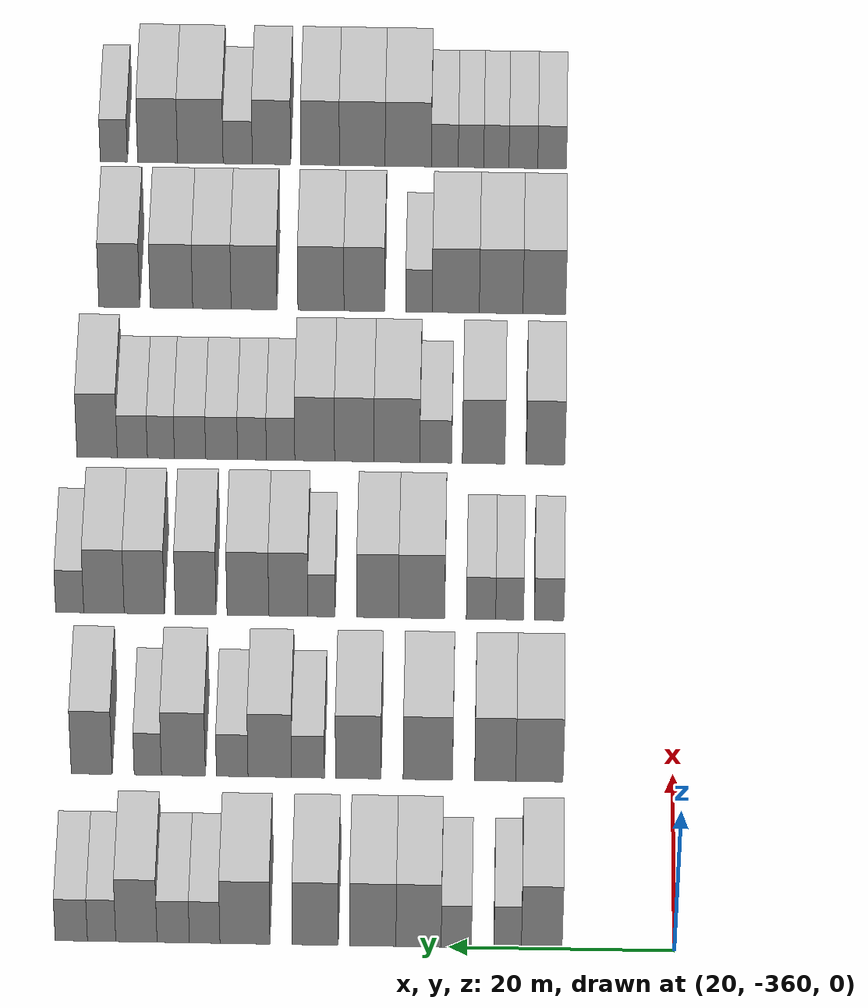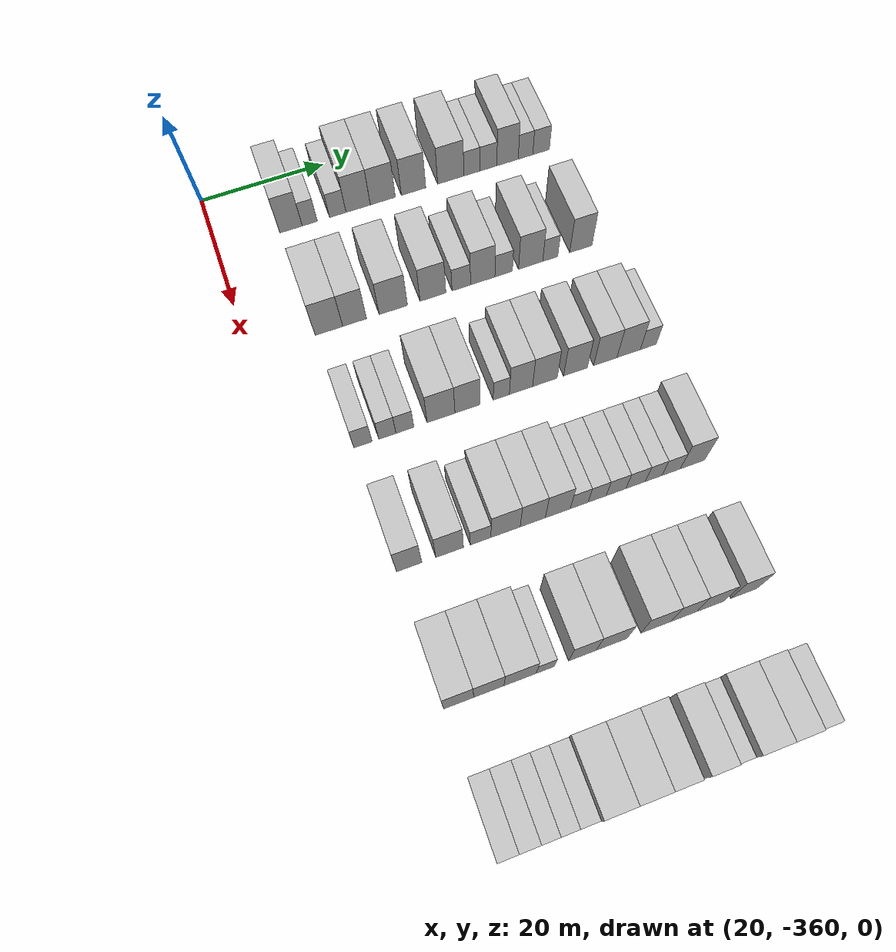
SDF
<sdf version="1.6">
 <world name="default">
  <model name="building_1">
   <static>1</static>
   <pose>25.0000 -348.1907 0 0.000000 0.000000 0.000000</pose>
   <link name="link">
    <pose>0 0 4.50 0 0 0</pose>
    <collision name="collision"><geometry><box><size>10.0000 3.6186 9.0000</size></box></geometry></collision>
    <visual name="visual">
     <cast_shadows>0</cast_shadows>
     <geometry><box><size>10.0000 3.6186 9.0000</size></box></geometry>
     <material>
      <script>
       <uri>model://HANNAS_wall/materials/scripts</uri>
       <uri>model://HANNAS_wall/materials/textures</uri>
       <name>vrc/HANNAS_wall</name>
      </script>
     </material>
    </visual>
   </link>
  </model>
  <model name="building_2">
   <static>1</static>
   <pose>25.0000 -345.1606 0 0.000000 0.000000 0.000000</pose>
   <link name="link">
    <pose>0 0 3.00 0 0 0</pose>
    <collision name="collision"><geometry><box><size>10.0000 2.4416 6.0000</size></box></geometry></collision>
    <visual name="visual">
     <cast_shadows>0</cast_shadows>
     <geometry><box><size>10.0000 2.4416 6.0000</size></box></geometry>
     <material>
      <script>
       <uri>model://HANNAS_wall/materials/scripts</uri>
       <uri>model://HANNAS_wall/materials/textures</uri>
       <name>vrc/HANNAS_wall</name>
      </script>
     </material>
    </visual>
   </link>
  </model>
  <model name="building_3">
   <static>1</static>
   <pose>25.0000 -340.5947 0 0.000000 0.000000 0.000000</pose>
   <link name="link">
    <pose>0 0 3.00 0 0 0</pose>
    <collision name="collision"><geometry><box><size>10.0000 2.6903 6.0000</size></box></geometry></collision>
    <visual name="visual">
     <cast_shadows>0</cast_shadows>
     <geometry><box><size>10.0000 2.6903 6.0000</size></box></geometry>
     <material>
      <script>
       <uri>model://HANNAS_wall/materials/scripts</uri>
       <uri>model://HANNAS_wall/materials/textures</uri>
       <name>vrc/HANNAS_wall</name>
      </script>
     </material>
    </visual>
   </link>
  </model>
  <model name="building_4">
   <static>1</static>
   <pose>25.0000 -337.2430 0 0.000000 0.000000 0.000000</pose>
   <link name="link">
    <pose>0 0 4.50 0 0 0</pose>
    <collision name="collision"><geometry><box><size>10.0000 4.0130 9.0000</size></box></geometry></collision>
    <visual name="visual">
     <cast_shadows>0</cast_shadows>
     <geometry><box><size>10.0000 4.0130 9.0000</size></box></geometry>
     <material>
      <script>
       <uri>model://HANNAS_wall/materials/scripts</uri>
       <uri>model://HANNAS_wall/materials/textures</uri>
       <name>vrc/HANNAS_wall</name>
      </script>
     </material>
    </visual>
   </link>
  </model>
  <model name="building_5">
   <static>1</static>
   <pose>25.0000 -333.1669 0 0.000000 0.000000 0.000000</pose>
   <link name="link">
    <pose>0 0 4.50 0 0 0</pose>
    <collision name="collision"><geometry><box><size>10.0000 4.1390 9.0000</size></box></geometry></collision>
    <visual name="visual">
     <cast_shadows>0</cast_shadows>
     <geometry><box><size>10.0000 4.1390 9.0000</size></box></geometry>
     <material>
      <script>
       <uri>model://HANNAS_wall/materials/scripts</uri>
       <uri>model://HANNAS_wall/materials/textures</uri>
       <name>vrc/HANNAS_wall</name>
      </script>
     </material>
    </visual>
   </link>
  </model>
  <model name="building_6">
   <static>1</static>
   <pose>25.0000 -328.0562 0 0.000000 0.000000 0.000000</pose>
   <link name="link">
    <pose>0 0 4.50 0 0 0</pose>
    <collision name="collision"><geometry><box><size>10.0000 4.0825 9.0000</size></box></geometry></collision>
    <visual name="visual">
     <cast_shadows>0</cast_shadows>
     <geometry><box><size>10.0000 4.0825 9.0000</size></box></geometry>
     <material>
      <script>
       <uri>model://HANNAS_wall/materials/scripts</uri>
       <uri>model://HANNAS_wall/materials/textures</uri>
       <name>vrc/HANNAS_wall</name>
      </script>
     </material>
    </visual>
   </link>
  </model>
  <model name="building_7">
   <static>1</static>
   <pose>25.0000 -321.7892 0 0.000000 0.000000 0.000000</pose>
   <link name="link">
    <pose>0 0 4.50 0 0 0</pose>
    <collision name="collision"><geometry><box><size>10.0000 4.4515 9.0000</size></box></geometry></collision>
    <visual name="visual">
     <cast_shadows>0</cast_shadows>
     <geometry><box><size>10.0000 4.4515 9.0000</size></box></geometry>
     <material>
      <script>
       <uri>model://HANNAS_wall/materials/scripts</uri>
       <uri>model://HANNAS_wall/materials/textures</uri>
       <name>vrc/HANNAS_wall</name>
      </script>
     </material>
    </visual>
   </link>
  </model>
  <model name="building_8">
   <static>1</static>
   <pose>25.0000 -318.2022 0 0.000000 0.000000 0.000000</pose>
   <link name="link">
    <pose>0 0 3.00 0 0 0</pose>
    <collision name="collision"><geometry><box><size>10.0000 2.7226 6.0000</size></box></geometry></collision>
    <visual name="visual">
     <cast_shadows>0</cast_shadows>
     <geometry><box><size>10.0000 2.7226 6.0000</size></box></geometry>
     <material>
      <script>
       <uri>model://HANNAS_wall/materials/scripts</uri>
       <uri>model://HANNAS_wall/materials/textures</uri>
       <name>vrc/HANNAS_wall</name>
      </script>
     </material>
    </visual>
   </link>
  </model>
  <model name="building_9">
   <static>1</static>
   <pose>25.0000 -315.4016 0 0.000000 0.000000 0.000000</pose>
   <link name="link">
    <pose>0 0 3.00 0 0 0</pose>
    <collision name="collision"><geometry><box><size>10.0000 2.8787 6.0000</size></box></geometry></collision>
    <visual name="visual">
     <cast_shadows>0</cast_shadows>
     <geometry><box><size>10.0000 2.8787 6.0000</size></box></geometry>
     <material>
      <script>
       <uri>model://HANNAS_wall/materials/scripts</uri>
       <uri>model://HANNAS_wall/materials/textures</uri>
       <name>vrc/HANNAS_wall</name>
      </script>
     </material>
    </visual>
   </link>
  </model>
  <model name="building_10">
   <static>1</static>
   <pose>25.0000 -312.1245 0 0.000000 0.000000 0.000000</pose>
   <link name="link">
    <pose>0 0 4.50 0 0 0</pose>
    <collision name="collision"><geometry><box><size>10.0000 3.6753 9.0000</size></box></geometry></collision>
    <visual name="visual">
     <cast_shadows>0</cast_shadows>
     <geometry><box><size>10.0000 3.6753 9.0000</size></box></geometry>
     <material>
      <script>
       <uri>model://HANNAS_wall/materials/scripts</uri>
       <uri>model://HANNAS_wall/materials/textures</uri>
       <name>vrc/HANNAS_wall</name>
      </script>
     </material>
    </visual>
   </link>
  </model>
  <model name="building_11">
   <static>1</static>
   <pose>25.0000 -309.0250 0 0.000000 0.000000 0.000000</pose>
   <link name="link">
    <pose>0 0 3.00 0 0 0</pose>
    <collision name="collision"><geometry><box><size>10.0000 2.5237 6.0000</size></box></geometry></collision>
    <visual name="visual">
     <cast_shadows>0</cast_shadows>
     <geometry><box><size>10.0000 2.5237 6.0000</size></box></geometry>
     <material>
      <script>
       <uri>model://HANNAS_wall/materials/scripts</uri>
       <uri>model://HANNAS_wall/materials/textures</uri>
       <name>vrc/HANNAS_wall</name>
      </script>
     </material>
    </visual>
   </link>
  </model>
  <model name="building_12">
   <static>1</static>
   <pose>25.0000 -306.3264 0 0.000000 0.000000 0.000000</pose>
   <link name="link">
    <pose>0 0 3.00 0 0 0</pose>
    <collision name="collision"><geometry><box><size>10.0000 2.8734 6.0000</size></box></geometry></collision>
    <visual name="visual">
     <cast_shadows>0</cast_shadows>
     <geometry><box><size>10.0000 2.8734 6.0000</size></box></geometry>
     <material>
      <script>
       <uri>model://HANNAS_wall/materials/scripts</uri>
       <uri>model://HANNAS_wall/materials/textures</uri>
       <name>vrc/HANNAS_wall</name>
      </script>
     </material>
    </visual>
   </link>
  </model>
  <model name="building_171">
   <static>1</static>
   <pose>44.0000 -347.8602 0 0.000000 0.000000 0.000000</pose>
   <link name="link">
    <pose>0 0 4.50 0 0 0</pose>
    <collision name="collision"><geometry><box><size>10.0000 4.2797 9.0000</size></box></geometry></collision>
    <visual name="visual">
     <cast_shadows>0</cast_shadows>
     <geometry><box><size>10.0000 4.2797 9.0000</size></box></geometry>
     <material>
      <script>
       <uri>model://HANNAS_wall/materials/scripts</uri>
       <uri>model://HANNAS_wall/materials/textures</uri>
       <name>vrc/HANNAS_wall</name>
      </script>
     </material>
    </visual>
   </link>
  </model>
  <model name="building_172">
   <static>1</static>
   <pose>44.0000 -343.8619 0 0.000000 0.000000 0.000000</pose>
   <link name="link">
    <pose>0 0 4.50 0 0 0</pose>
    <collision name="collision"><geometry><box><size>10.0000 3.7168 9.0000</size></box></geometry></collision>
    <visual name="visual">
     <cast_shadows>0</cast_shadows>
     <geometry><box><size>10.0000 3.7168 9.0000</size></box></geometry>
     <material>
      <script>
       <uri>model://HANNAS_wall/materials/scripts</uri>
       <uri>model://HANNAS_wall/materials/textures</uri>
       <name>vrc/HANNAS_wall</name>
      </script>
     </material>
    </visual>
   </link>
  </model>
  <model name="building_173">
   <static>1</static>
   <pose>44.0000 -337.7668 0 0.000000 0.000000 0.000000</pose>
   <link name="link">
    <pose>0 0 4.50 0 0 0</pose>
    <collision name="collision"><geometry><box><size>10.0000 4.4733 9.0000</size></box></geometry></collision>
    <visual name="visual">
     <cast_shadows>0</cast_shadows>
     <geometry><box><size>10.0000 4.4733 9.0000</size></box></geometry>
     <material>
      <script>
       <uri>model://HANNAS_wall/materials/scripts</uri>
       <uri>model://HANNAS_wall/materials/textures</uri>
       <name>vrc/HANNAS_wall</name>
      </script>
     </material>
    </visual>
   </link>
  </model>
  <model name="building_174">
   <static>1</static>
   <pose>44.0000 -331.4646 0 0.000000 0.000000 0.000000</pose>
   <link name="link">
    <pose>0 0 4.50 0 0 0</pose>
    <collision name="collision"><geometry><box><size>10.0000 4.1311 9.0000</size></box></geometry></collision>
    <visual name="visual">
     <cast_shadows>0</cast_shadows>
     <geometry><box><size>10.0000 4.1311 9.0000</size></box></geometry>
     <material>
      <script>
       <uri>model://HANNAS_wall/materials/scripts</uri>
       <uri>model://HANNAS_wall/materials/textures</uri>
       <name>vrc/HANNAS_wall</name>
      </script>
     </material>
    </visual>
   </link>
  </model>
  <model name="building_175">
   <static>1</static>
   <pose>44.0000 -326.9094 0 0.000000 0.000000 0.000000</pose>
   <link name="link">
    <pose>0 0 3.00 0 0 0</pose>
    <collision name="collision"><geometry><box><size>10.0000 2.9793 6.0000</size></box></geometry></collision>
    <visual name="visual">
     <cast_shadows>0</cast_shadows>
     <geometry><box><size>10.0000 2.9793 6.0000</size></box></geometry>
     <material>
      <script>
       <uri>model://HANNAS_wall/materials/scripts</uri>
       <uri>model://HANNAS_wall/materials/textures</uri>
       <name>vrc/HANNAS_wall</name>
      </script>
     </material>
    </visual>
   </link>
  </model>
  <model name="building_176">
   <static>1</static>
   <pose>44.0000 -323.4449 0 0.000000 0.000000 0.000000</pose>
   <link name="link">
    <pose>0 0 4.50 0 0 0</pose>
    <collision name="collision"><geometry><box><size>10.0000 3.9497 9.0000</size></box></geometry></collision>
    <visual name="visual">
     <cast_shadows>0</cast_shadows>
     <geometry><box><size>10.0000 3.9497 9.0000</size></box></geometry>
     <material>
      <script>
       <uri>model://HANNAS_wall/materials/scripts</uri>
       <uri>model://HANNAS_wall/materials/textures</uri>
       <name>vrc/HANNAS_wall</name>
      </script>
     </material>
    </visual>
   </link>
  </model>
  <model name="building_177">
   <static>1</static>
   <pose>44.0000 -320.0393 0 0.000000 0.000000 0.000000</pose>
   <link name="link">
    <pose>0 0 3.00 0 0 0</pose>
    <collision name="collision"><geometry><box><size>10.0000 2.8614 6.0000</size></box></geometry></collision>
    <visual name="visual">
     <cast_shadows>0</cast_shadows>
     <geometry><box><size>10.0000 2.8614 6.0000</size></box></geometry>
     <material>
      <script>
       <uri>model://HANNAS_wall/materials/scripts</uri>
       <uri>model://HANNAS_wall/materials/textures</uri>
       <name>vrc/HANNAS_wall</name>
      </script>
     </material>
    </visual>
   </link>
  </model>
  <model name="building_178">
   <static>1</static>
   <pose>44.0000 -315.6169 0 0.000000 0.000000 0.000000</pose>
   <link name="link">
    <pose>0 0 4.50 0 0 0</pose>
    <collision name="collision"><geometry><box><size>10.0000 3.9834 9.0000</size></box></geometry></collision>
    <visual name="visual">
     <cast_shadows>0</cast_shadows>
     <geometry><box><size>10.0000 3.9834 9.0000</size></box></geometry>
     <material>
      <script>
       <uri>model://HANNAS_wall/materials/scripts</uri>
       <uri>model://HANNAS_wall/materials/textures</uri>
       <name>vrc/HANNAS_wall</name>
      </script>
     </material>
    </visual>
   </link>
  </model>
  <model name="building_179">
   <static>1</static>
   <pose>44.0000 -312.3889 0 0.000000 0.000000 0.000000</pose>
   <link name="link">
    <pose>0 0 3.00 0 0 0</pose>
    <collision name="collision"><geometry><box><size>10.0000 2.4725 6.0000</size></box></geometry></collision>
    <visual name="visual">
     <cast_shadows>0</cast_shadows>
     <geometry><box><size>10.0000 2.4725 6.0000</size></box></geometry>
     <material>
      <script>
       <uri>model://HANNAS_wall/materials/scripts</uri>
       <uri>model://HANNAS_wall/materials/textures</uri>
       <name>vrc/HANNAS_wall</name>
      </script>
     </material>
    </visual>
   </link>
  </model>
  <model name="building_180">
   <static>1</static>
   <pose>44.0000 -307.2992 0 0.000000 0.000000 0.000000</pose>
   <link name="link">
    <pose>0 0 4.50 0 0 0</pose>
    <collision name="collision"><geometry><box><size>10.0000 3.7068 9.0000</size></box></geometry></collision>
    <visual name="visual">
     <cast_shadows>0</cast_shadows>
     <geometry><box><size>10.0000 3.7068 9.0000</size></box></geometry>
     <material>
      <script>
       <uri>model://HANNAS_wall/materials/scripts</uri>
       <uri>model://HANNAS_wall/materials/textures</uri>
       <name>vrc/HANNAS_wall</name>
      </script>
     </material>
    </visual>
   </link>
  </model>
  <model name="building_346">
   <static>1</static>
   <pose>63.0000 -348.6409 0 0.000000 0.000000 0.000000</pose>
   <link name="link">
    <pose>0 0 3.00 0 0 0</pose>
    <collision name="collision"><geometry><box><size>10.0000 2.7182 6.0000</size></box></geometry></collision>
    <visual name="visual">
     <cast_shadows>0</cast_shadows>
     <geometry><box><size>10.0000 2.7182 6.0000</size></box></geometry>
     <material>
      <script>
       <uri>model://HANNAS_wall/materials/scripts</uri>
       <uri>model://HANNAS_wall/materials/textures</uri>
       <name>vrc/HANNAS_wall</name>
      </script>
     </material>
    </visual>
   </link>
  </model>
  <model name="building_347">
   <static>1</static>
   <pose>63.0000 -344.9984 0 0.000000 0.000000 0.000000</pose>
   <link name="link">
    <pose>0 0 3.00 0 0 0</pose>
    <collision name="collision"><geometry><box><size>10.0000 2.5669 6.0000</size></box></geometry></collision>
    <visual name="visual">
     <cast_shadows>0</cast_shadows>
     <geometry><box><size>10.0000 2.5669 6.0000</size></box></geometry>
     <material>
      <script>
       <uri>model://HANNAS_wall/materials/scripts</uri>
       <uri>model://HANNAS_wall/materials/textures</uri>
       <name>vrc/HANNAS_wall</name>
      </script>
     </material>
    </visual>
   </link>
  </model>
  <model name="building_348">
   <static>1</static>
   <pose>63.0000 -342.3646 0 0.000000 0.000000 0.000000</pose>
   <link name="link">
    <pose>0 0 3.00 0 0 0</pose>
    <collision name="collision"><geometry><box><size>10.0000 2.7005 6.0000</size></box></geometry></collision>
    <visual name="visual">
     <cast_shadows>0</cast_shadows>
     <geometry><box><size>10.0000 2.7005 6.0000</size></box></geometry>
     <material>
      <script>
       <uri>model://HANNAS_wall/materials/scripts</uri>
       <uri>model://HANNAS_wall/materials/textures</uri>
       <name>vrc/HANNAS_wall</name>
      </script>
     </material>
    </visual>
   </link>
  </model>
  <model name="building_349">
   <static>1</static>
   <pose>63.0000 -336.8951 0 0.000000 0.000000 0.000000</pose>
   <link name="link">
    <pose>0 0 4.50 0 0 0</pose>
    <collision name="collision"><geometry><box><size>10.0000 4.2386 9.0000</size></box></geometry></collision>
    <visual name="visual">
     <cast_shadows>0</cast_shadows>
     <geometry><box><size>10.0000 4.2386 9.0000</size></box></geometry>
     <material>
      <script>
       <uri>model://HANNAS_wall/materials/scripts</uri>
       <uri>model://HANNAS_wall/materials/textures</uri>
       <name>vrc/HANNAS_wall</name>
      </script>
     </material>
    </visual>
   </link>
  </model>
  <model name="building_350">
   <static>1</static>
   <pose>63.0000 -332.8420 0 0.000000 0.000000 0.000000</pose>
   <link name="link">
    <pose>0 0 4.50 0 0 0</pose>
    <collision name="collision"><geometry><box><size>10.0000 3.8676 9.0000</size></box></geometry></collision>
    <visual name="visual">
     <cast_shadows>0</cast_shadows>
     <geometry><box><size>10.0000 3.8676 9.0000</size></box></geometry>
     <material>
      <script>
       <uri>model://HANNAS_wall/materials/scripts</uri>
       <uri>model://HANNAS_wall/materials/textures</uri>
       <name>vrc/HANNAS_wall</name>
      </script>
     </material>
    </visual>
   </link>
  </model>
  <model name="building_351">
   <static>1</static>
   <pose>63.0000 -327.6568 0 0.000000 0.000000 0.000000</pose>
   <link name="link">
    <pose>0 0 3.00 0 0 0</pose>
    <collision name="collision"><geometry><box><size>10.0000 2.5027 6.0000</size></box></geometry></collision>
    <visual name="visual">
     <cast_shadows>0</cast_shadows>
     <geometry><box><size>10.0000 2.5027 6.0000</size></box></geometry>
     <material>
      <script>
       <uri>model://HANNAS_wall/materials/scripts</uri>
       <uri>model://HANNAS_wall/materials/textures</uri>
       <name>vrc/HANNAS_wall</name>
      </script>
     </material>
    </visual>
   </link>
  </model>
  <model name="building_352">
   <static>1</static>
   <pose>63.0000 -324.6004 0 0.000000 0.000000 0.000000</pose>
   <link name="link">
    <pose>0 0 4.50 0 0 0</pose>
    <collision name="collision"><geometry><box><size>10.0000 3.6103 9.0000</size></box></geometry></collision>
    <visual name="visual">
     <cast_shadows>0</cast_shadows>
     <geometry><box><size>10.0000 3.6103 9.0000</size></box></geometry>
     <material>
      <script>
       <uri>model://HANNAS_wall/materials/scripts</uri>
       <uri>model://HANNAS_wall/materials/textures</uri>
       <name>vrc/HANNAS_wall</name>
      </script>
     </material>
    </visual>
   </link>
  </model>
  <model name="building_353">
   <static>1</static>
   <pose>63.0000 -320.8687 0 0.000000 0.000000 0.000000</pose>
   <link name="link">
    <pose>0 0 4.50 0 0 0</pose>
    <collision name="collision"><geometry><box><size>10.0000 3.8529 9.0000</size></box></geometry></collision>
    <visual name="visual">
     <cast_shadows>0</cast_shadows>
     <geometry><box><size>10.0000 3.8529 9.0000</size></box></geometry>
     <material>
      <script>
       <uri>model://HANNAS_wall/materials/scripts</uri>
       <uri>model://HANNAS_wall/materials/textures</uri>
       <name>vrc/HANNAS_wall</name>
      </script>
     </material>
    </visual>
   </link>
  </model>
  <model name="building_354">
   <static>1</static>
   <pose>63.0000 -316.0559 0 0.000000 0.000000 0.000000</pose>
   <link name="link">
    <pose>0 0 4.50 0 0 0</pose>
    <collision name="collision"><geometry><box><size>10.0000 3.7727 9.0000</size></box></geometry></collision>
    <visual name="visual">
     <cast_shadows>0</cast_shadows>
     <geometry><box><size>10.0000 3.7727 9.0000</size></box></geometry>
     <material>
      <script>
       <uri>model://HANNAS_wall/materials/scripts</uri>
       <uri>model://HANNAS_wall/materials/textures</uri>
       <name>vrc/HANNAS_wall</name>
      </script>
     </material>
    </visual>
   </link>
  </model>
  <model name="building_355">
   <static>1</static>
   <pose>63.0000 -311.3081 0 0.000000 0.000000 0.000000</pose>
   <link name="link">
    <pose>0 0 4.50 0 0 0</pose>
    <collision name="collision"><geometry><box><size>10.0000 3.7229 9.0000</size></box></geometry></collision>
    <visual name="visual">
     <cast_shadows>0</cast_shadows>
     <geometry><box><size>10.0000 3.7229 9.0000</size></box></geometry>
     <material>
      <script>
       <uri>model://HANNAS_wall/materials/scripts</uri>
       <uri>model://HANNAS_wall/materials/textures</uri>
       <name>vrc/HANNAS_wall</name>
      </script>
     </material>
    </visual>
   </link>
  </model>
  <model name="building_356">
   <static>1</static>
   <pose>63.0000 -307.5812 0 0.000000 0.000000 0.000000</pose>
   <link name="link">
    <pose>0 0 4.50 0 0 0</pose>
    <collision name="collision"><geometry><box><size>10.0000 3.7310 9.0000</size></box></geometry></collision>
    <visual name="visual">
     <cast_shadows>0</cast_shadows>
     <geometry><box><size>10.0000 3.7310 9.0000</size></box></geometry>
     <material>
      <script>
       <uri>model://HANNAS_wall/materials/scripts</uri>
       <uri>model://HANNAS_wall/materials/textures</uri>
       <name>vrc/HANNAS_wall</name>
      </script>
     </material>
    </visual>
   </link>
  </model>
  <model name="building_357">
   <static>1</static>
   <pose>63.0000 -304.4233 0 0.000000 0.000000 0.000000</pose>
   <link name="link">
    <pose>0 0 3.00 0 0 0</pose>
    <collision name="collision"><geometry><box><size>10.0000 2.5848 6.0000</size></box></geometry></collision>
    <visual name="visual">
     <cast_shadows>0</cast_shadows>
     <geometry><box><size>10.0000 2.5848 6.0000</size></box></geometry>
     <material>
      <script>
       <uri>model://HANNAS_wall/materials/scripts</uri>
       <uri>model://HANNAS_wall/materials/textures</uri>
       <name>vrc/HANNAS_wall</name>
      </script>
     </material>
    </visual>
   </link>
  </model>
  <model name="building_518">
   <static>1</static>
   <pose>82.0000 -348.1939 0 0.000000 0.000000 0.000000</pose>
   <link name="link">
    <pose>0 0 4.50 0 0 0</pose>
    <collision name="collision"><geometry><box><size>10.0000 3.6122 9.0000</size></box></geometry></collision>
    <visual name="visual">
     <cast_shadows>0</cast_shadows>
     <geometry><box><size>10.0000 3.6122 9.0000</size></box></geometry>
     <material>
      <script>
       <uri>model://HANNAS_wall/materials/scripts</uri>
       <uri>model://HANNAS_wall/materials/textures</uri>
       <name>vrc/HANNAS_wall</name>
      </script>
     </material>
    </visual>
   </link>
  </model>
  <model name="building_519">
   <static>1</static>
   <pose>82.0000 -342.3950 0 0.000000 0.000000 0.000000</pose>
   <link name="link">
    <pose>0 0 4.50 0 0 0</pose>
    <collision name="collision"><geometry><box><size>10.0000 3.9855 9.0000</size></box></geometry></collision>
    <visual name="visual">
     <cast_shadows>0</cast_shadows>
     <geometry><box><size>10.0000 3.9855 9.0000</size></box></geometry>
     <material>
      <script>
       <uri>model://HANNAS_wall/materials/scripts</uri>
       <uri>model://HANNAS_wall/materials/textures</uri>
       <name>vrc/HANNAS_wall</name>
      </script>
     </material>
    </visual>
   </link>
  </model>
  <model name="building_520">
   <static>1</static>
   <pose>82.0000 -337.9109 0 0.000000 0.000000 0.000000</pose>
   <link name="link">
    <pose>0 0 3.00 0 0 0</pose>
    <collision name="collision"><geometry><box><size>10.0000 2.9827 6.0000</size></box></geometry></collision>
    <visual name="visual">
     <cast_shadows>0</cast_shadows>
     <geometry><box><size>10.0000 2.9827 6.0000</size></box></geometry>
     <material>
      <script>
       <uri>model://HANNAS_wall/materials/scripts</uri>
       <uri>model://HANNAS_wall/materials/textures</uri>
       <name>vrc/HANNAS_wall</name>
      </script>
     </material>
    </visual>
   </link>
  </model>
  <model name="building_521">
   <static>1</static>
   <pose>82.0000 -334.2741 0 0.000000 0.000000 0.000000</pose>
   <link name="link">
    <pose>0 0 4.50 0 0 0</pose>
    <collision name="collision"><geometry><box><size>10.0000 4.2909 9.0000</size></box></geometry></collision>
    <visual name="visual">
     <cast_shadows>0</cast_shadows>
     <geometry><box><size>10.0000 4.2909 9.0000</size></box></geometry>
     <material>
      <script>
       <uri>model://HANNAS_wall/materials/scripts</uri>
       <uri>model://HANNAS_wall/materials/textures</uri>
       <name>vrc/HANNAS_wall</name>
      </script>
     </material>
    </visual>
   </link>
  </model>
  <model name="building_522">
   <static>1</static>
   <pose>82.0000 -330.2715 0 0.000000 0.000000 0.000000</pose>
   <link name="link">
    <pose>0 0 4.50 0 0 0</pose>
    <collision name="collision"><geometry><box><size>10.0000 3.7142 9.0000</size></box></geometry></collision>
    <visual name="visual">
     <cast_shadows>0</cast_shadows>
     <geometry><box><size>10.0000 3.7142 9.0000</size></box></geometry>
     <material>
      <script>
       <uri>model://HANNAS_wall/materials/scripts</uri>
       <uri>model://HANNAS_wall/materials/textures</uri>
       <name>vrc/HANNAS_wall</name>
      </script>
     </material>
    </visual>
   </link>
  </model>
  <model name="building_523">
   <static>1</static>
   <pose>82.0000 -326.5477 0 0.000000 0.000000 0.000000</pose>
   <link name="link">
    <pose>0 0 4.50 0 0 0</pose>
    <collision name="collision"><geometry><box><size>10.0000 3.7333 9.0000</size></box></geometry></collision>
    <visual name="visual">
     <cast_shadows>0</cast_shadows>
     <geometry><box><size>10.0000 3.7333 9.0000</size></box></geometry>
     <material>
      <script>
       <uri>model://HANNAS_wall/materials/scripts</uri>
       <uri>model://HANNAS_wall/materials/textures</uri>
       <name>vrc/HANNAS_wall</name>
      </script>
     </material>
    </visual>
   </link>
  </model>
  <model name="building_524">
   <static>1</static>
   <pose>82.0000 -323.3432 0 0.000000 0.000000 0.000000</pose>
   <link name="link">
    <pose>0 0 3.00 0 0 0</pose>
    <collision name="collision"><geometry><box><size>10.0000 2.6756 6.0000</size></box></geometry></collision>
    <visual name="visual">
     <cast_shadows>0</cast_shadows>
     <geometry><box><size>10.0000 2.6756 6.0000</size></box></geometry>
     <material>
      <script>
       <uri>model://HANNAS_wall/materials/scripts</uri>
       <uri>model://HANNAS_wall/materials/textures</uri>
       <name>vrc/HANNAS_wall</name>
      </script>
     </material>
    </visual>
   </link>
  </model>
  <model name="building_525">
   <static>1</static>
   <pose>82.0000 -320.6551 0 0.000000 0.000000 0.000000</pose>
   <link name="link">
    <pose>0 0 3.00 0 0 0</pose>
    <collision name="collision"><geometry><box><size>10.0000 2.7008 6.0000</size></box></geometry></collision>
    <visual name="visual">
     <cast_shadows>0</cast_shadows>
     <geometry><box><size>10.0000 2.7008 6.0000</size></box></geometry>
     <material>
      <script>
       <uri>model://HANNAS_wall/materials/scripts</uri>
       <uri>model://HANNAS_wall/materials/textures</uri>
       <name>vrc/HANNAS_wall</name>
      </script>
     </material>
    </visual>
   </link>
  </model>
  <model name="building_526">
   <static>1</static>
   <pose>82.0000 -317.8074 0 0.000000 0.000000 0.000000</pose>
   <link name="link">
    <pose>0 0 3.00 0 0 0</pose>
    <collision name="collision"><geometry><box><size>10.0000 2.9945 6.0000</size></box></geometry></collision>
    <visual name="visual">
     <cast_shadows>0</cast_shadows>
     <geometry><box><size>10.0000 2.9945 6.0000</size></box></geometry>
     <material>
      <script>
       <uri>model://HANNAS_wall/materials/scripts</uri>
       <uri>model://HANNAS_wall/materials/textures</uri>
       <name>vrc/HANNAS_wall</name>
      </script>
     </material>
    </visual>
   </link>
  </model>
  <model name="building_527">
   <static>1</static>
   <pose>82.0000 -314.8422 0 0.000000 0.000000 0.000000</pose>
   <link name="link">
    <pose>0 0 3.00 0 0 0</pose>
    <collision name="collision"><geometry><box><size>10.0000 2.9360 6.0000</size></box></geometry></collision>
    <visual name="visual">
     <cast_shadows>0</cast_shadows>
     <geometry><box><size>10.0000 2.9360 6.0000</size></box></geometry>
     <material>
      <script>
       <uri>model://HANNAS_wall/materials/scripts</uri>
       <uri>model://HANNAS_wall/materials/textures</uri>
       <name>vrc/HANNAS_wall</name>
      </script>
     </material>
    </visual>
   </link>
  </model>
  <model name="building_528">
   <static>1</static>
   <pose>82.0000 -312.1066 0 0.000000 0.000000 0.000000</pose>
   <link name="link">
    <pose>0 0 3.00 0 0 0</pose>
    <collision name="collision"><geometry><box><size>10.0000 2.5352 6.0000</size></box></geometry></collision>
    <visual name="visual">
     <cast_shadows>0</cast_shadows>
     <geometry><box><size>10.0000 2.5352 6.0000</size></box></geometry>
     <material>
      <script>
       <uri>model://HANNAS_wall/materials/scripts</uri>
       <uri>model://HANNAS_wall/materials/textures</uri>
       <name>vrc/HANNAS_wall</name>
      </script>
     </material>
    </visual>
   </link>
  </model>
  <model name="building_529">
   <static>1</static>
   <pose>82.0000 -309.4241 0 0.000000 0.000000 0.000000</pose>
   <link name="link">
    <pose>0 0 3.00 0 0 0</pose>
    <collision name="collision"><geometry><box><size>10.0000 2.8296 6.0000</size></box></geometry></collision>
    <visual name="visual">
     <cast_shadows>0</cast_shadows>
     <geometry><box><size>10.0000 2.8296 6.0000</size></box></geometry>
     <material>
      <script>
       <uri>model://HANNAS_wall/materials/scripts</uri>
       <uri>model://HANNAS_wall/materials/textures</uri>
       <name>vrc/HANNAS_wall</name>
      </script>
     </material>
    </visual>
   </link>
  </model>
  <model name="building_530">
   <static>1</static>
   <pose>82.0000 -306.1182 0 0.000000 0.000000 0.000000</pose>
   <link name="link">
    <pose>0 0 4.50 0 0 0</pose>
    <collision name="collision"><geometry><box><size>10.0000 3.7823 9.0000</size></box></geometry></collision>
    <visual name="visual">
     <cast_shadows>0</cast_shadows>
     <geometry><box><size>10.0000 3.7823 9.0000</size></box></geometry>
     <material>
      <script>
       <uri>model://HANNAS_wall/materials/scripts</uri>
       <uri>model://HANNAS_wall/materials/textures</uri>
       <name>vrc/HANNAS_wall</name>
      </script>
     </material>
    </visual>
   </link>
  </model>
  <model name="building_705">
   <static>1</static>
   <pose>101.0000 -347.9670 0 0.000000 0.000000 0.000000</pose>
   <link name="link">
    <pose>0 0 4.50 0 0 0</pose>
    <collision name="collision"><geometry><box><size>10.0000 4.0660 9.0000</size></box></geometry></collision>
    <visual name="visual">
     <cast_shadows>0</cast_shadows>
     <geometry><box><size>10.0000 4.0660 9.0000</size></box></geometry>
     <material>
      <script>
       <uri>model://HANNAS_wall/materials/scripts</uri>
       <uri>model://HANNAS_wall/materials/textures</uri>
       <name>vrc/HANNAS_wall</name>
      </script>
     </material>
    </visual>
   </link>
  </model>
  <model name="building_706">
   <static>1</static>
   <pose>101.0000 -343.8553 0 0.000000 0.000000 0.000000</pose>
   <link name="link">
    <pose>0 0 4.50 0 0 0</pose>
    <collision name="collision"><geometry><box><size>10.0000 4.1575 9.0000</size></box></geometry></collision>
    <visual name="visual">
     <cast_shadows>0</cast_shadows>
     <geometry><box><size>10.0000 4.1575 9.0000</size></box></geometry>
     <material>
      <script>
       <uri>model://HANNAS_wall/materials/scripts</uri>
       <uri>model://HANNAS_wall/materials/textures</uri>
       <name>vrc/HANNAS_wall</name>
      </script>
     </material>
    </visual>
   </link>
  </model>
  <model name="building_707">
   <static>1</static>
   <pose>101.0000 -339.5281 0 0.000000 0.000000 0.000000</pose>
   <link name="link">
    <pose>0 0 4.50 0 0 0</pose>
    <collision name="collision"><geometry><box><size>10.0000 4.4970 9.0000</size></box></geometry></collision>
    <visual name="visual">
     <cast_shadows>0</cast_shadows>
     <geometry><box><size>10.0000 4.4970 9.0000</size></box></geometry>
     <material>
      <script>
       <uri>model://HANNAS_wall/materials/scripts</uri>
       <uri>model://HANNAS_wall/materials/textures</uri>
       <name>vrc/HANNAS_wall</name>
      </script>
     </material>
    </visual>
   </link>
  </model>
  <model name="building_708">
   <static>1</static>
   <pose>101.0000 -336.0119 0 0.000000 0.000000 0.000000</pose>
   <link name="link">
    <pose>0 0 3.00 0 0 0</pose>
    <collision name="collision"><geometry><box><size>10.0000 2.5353 6.0000</size></box></geometry></collision>
    <visual name="visual">
     <cast_shadows>0</cast_shadows>
     <geometry><box><size>10.0000 2.5353 6.0000</size></box></geometry>
     <material>
      <script>
       <uri>model://HANNAS_wall/materials/scripts</uri>
       <uri>model://HANNAS_wall/materials/textures</uri>
       <name>vrc/HANNAS_wall</name>
      </script>
     </material>
    </visual>
   </link>
  </model>
  <model name="building_709">
   <static>1</static>
   <pose>101.0000 -330.8005 0 0.000000 0.000000 0.000000</pose>
   <link name="link">
    <pose>0 0 4.50 0 0 0</pose>
    <collision name="collision"><geometry><box><size>10.0000 3.8876 9.0000</size></box></geometry></collision>
    <visual name="visual">
     <cast_shadows>0</cast_shadows>
     <geometry><box><size>10.0000 3.8876 9.0000</size></box></geometry>
     <material>
      <script>
       <uri>model://HANNAS_wall/materials/scripts</uri>
       <uri>model://HANNAS_wall/materials/textures</uri>
       <name>vrc/HANNAS_wall</name>
      </script>
     </material>
    </visual>
   </link>
  </model>
  <model name="building_710">
   <static>1</static>
   <pose>101.0000 -326.6595 0 0.000000 0.000000 0.000000</pose>
   <link name="link">
    <pose>0 0 4.50 0 0 0</pose>
    <collision name="collision"><geometry><box><size>10.0000 4.3943 9.0000</size></box></geometry></collision>
    <visual name="visual">
     <cast_shadows>0</cast_shadows>
     <geometry><box><size>10.0000 4.3943 9.0000</size></box></geometry>
     <material>
      <script>
       <uri>model://HANNAS_wall/materials/scripts</uri>
       <uri>model://HANNAS_wall/materials/textures</uri>
       <name>vrc/HANNAS_wall</name>
      </script>
     </material>
    </visual>
   </link>
  </model>
  <model name="building_711">
   <static>1</static>
   <pose>101.0000 -320.2715 0 0.000000 0.000000 0.000000</pose>
   <link name="link">
    <pose>0 0 4.50 0 0 0</pose>
    <collision name="collision"><geometry><box><size>10.0000 4.3817 9.0000</size></box></geometry></collision>
    <visual name="visual">
     <cast_shadows>0</cast_shadows>
     <geometry><box><size>10.0000 4.3817 9.0000</size></box></geometry>
     <material>
      <script>
       <uri>model://HANNAS_wall/materials/scripts</uri>
       <uri>model://HANNAS_wall/materials/textures</uri>
       <name>vrc/HANNAS_wall</name>
      </script>
     </material>
    </visual>
   </link>
  </model>
  <model name="building_712">
   <static>1</static>
   <pose>101.0000 -316.2463 0 0.000000 0.000000 0.000000</pose>
   <link name="link">
    <pose>0 0 4.50 0 0 0</pose>
    <collision name="collision"><geometry><box><size>10.0000 3.6688 9.0000</size></box></geometry></collision>
    <visual name="visual">
     <cast_shadows>0</cast_shadows>
     <geometry><box><size>10.0000 3.6688 9.0000</size></box></geometry>
     <material>
      <script>
       <uri>model://HANNAS_wall/materials/scripts</uri>
       <uri>model://HANNAS_wall/materials/textures</uri>
       <name>vrc/HANNAS_wall</name>
      </script>
     </material>
    </visual>
   </link>
  </model>
  <model name="building_713">
   <static>1</static>
   <pose>101.0000 -312.3830 0 0.000000 0.000000 0.000000</pose>
   <link name="link">
    <pose>0 0 4.50 0 0 0</pose>
    <collision name="collision"><geometry><box><size>10.0000 4.0579 9.0000</size></box></geometry></collision>
    <visual name="visual">
     <cast_shadows>0</cast_shadows>
     <geometry><box><size>10.0000 4.0579 9.0000</size></box></geometry>
     <material>
      <script>
       <uri>model://HANNAS_wall/materials/scripts</uri>
       <uri>model://HANNAS_wall/materials/textures</uri>
       <name>vrc/HANNAS_wall</name>
      </script>
     </material>
    </visual>
   </link>
  </model>
  <model name="building_714">
   <static>1</static>
   <pose>101.0000 -307.4010 0 0.000000 0.000000 0.000000</pose>
   <link name="link">
    <pose>0 0 4.50 0 0 0</pose>
    <collision name="collision"><geometry><box><size>10.0000 3.9060 9.0000</size></box></geometry></collision>
    <visual name="visual">
     <cast_shadows>0</cast_shadows>
     <geometry><box><size>10.0000 3.9060 9.0000</size></box></geometry>
     <material>
      <script>
       <uri>model://HANNAS_wall/materials/scripts</uri>
       <uri>model://HANNAS_wall/materials/textures</uri>
       <name>vrc/HANNAS_wall</name>
      </script>
     </material>
    </visual>
   </link>
  </model>
  <model name="building_881">
   <static>1</static>
   <pose>120.0000 -348.6131 0 0.000000 0.000000 0.000000</pose>
   <link name="link">
    <pose>0 0 3.00 0 0 0</pose>
    <collision name="collision"><geometry><box><size>10.0000 2.7739 6.0000</size></box></geometry></collision>
    <visual name="visual">
     <cast_shadows>0</cast_shadows>
     <geometry><box><size>10.0000 2.7739 6.0000</size></box></geometry>
     <material>
      <script>
       <uri>model://HANNAS_wall/materials/scripts</uri>
       <uri>model://HANNAS_wall/materials/textures</uri>
       <name>vrc/HANNAS_wall</name>
      </script>
     </material>
    </visual>
   </link>
  </model>
  <model name="building_882">
   <static>1</static>
   <pose>120.0000 -345.8272 0 0.000000 0.000000 0.000000</pose>
   <link name="link">
    <pose>0 0 3.00 0 0 0</pose>
    <collision name="collision"><geometry><box><size>10.0000 2.7979 6.0000</size></box></geometry></collision>
    <visual name="visual">
     <cast_shadows>0</cast_shadows>
     <geometry><box><size>10.0000 2.7979 6.0000</size></box></geometry>
     <material>
      <script>
       <uri>model://HANNAS_wall/materials/scripts</uri>
       <uri>model://HANNAS_wall/materials/textures</uri>
       <name>vrc/HANNAS_wall</name>
      </script>
     </material>
    </visual>
   </link>
  </model>
  <model name="building_883">
   <static>1</static>
   <pose>120.0000 -343.2060 0 0.000000 0.000000 0.000000</pose>
   <link name="link">
    <pose>0 0 3.00 0 0 0</pose>
    <collision name="collision"><geometry><box><size>10.0000 2.4445 6.0000</size></box></geometry></collision>
    <visual name="visual">
     <cast_shadows>0</cast_shadows>
     <geometry><box><size>10.0000 2.4445 6.0000</size></box></geometry>
     <material>
      <script>
       <uri>model://HANNAS_wall/materials/scripts</uri>
       <uri>model://HANNAS_wall/materials/textures</uri>
       <name>vrc/HANNAS_wall</name>
      </script>
     </material>
    </visual>
   </link>
  </model>
  <model name="building_884">
   <static>1</static>
   <pose>120.0000 -340.7482 0 0.000000 0.000000 0.000000</pose>
   <link name="link">
    <pose>0 0 3.00 0 0 0</pose>
    <collision name="collision"><geometry><box><size>10.0000 2.4711 6.0000</size></box></geometry></collision>
    <visual name="visual">
     <cast_shadows>0</cast_shadows>
     <geometry><box><size>10.0000 2.4711 6.0000</size></box></geometry>
     <material>
      <script>
       <uri>model://HANNAS_wall/materials/scripts</uri>
       <uri>model://HANNAS_wall/materials/textures</uri>
       <name>vrc/HANNAS_wall</name>
      </script>
     </material>
    </visual>
   </link>
  </model>
  <model name="building_885">
   <static>1</static>
   <pose>120.0000 -338.2067 0 0.000000 0.000000 0.000000</pose>
   <link name="link">
    <pose>0 0 3.00 0 0 0</pose>
    <collision name="collision"><geometry><box><size>10.0000 2.6120 6.0000</size></box></geometry></collision>
    <visual name="visual">
     <cast_shadows>0</cast_shadows>
     <geometry><box><size>10.0000 2.6120 6.0000</size></box></geometry>
     <material>
      <script>
       <uri>model://HANNAS_wall/materials/scripts</uri>
       <uri>model://HANNAS_wall/materials/textures</uri>
       <name>vrc/HANNAS_wall</name>
      </script>
     </material>
    </visual>
   </link>
  </model>
  <model name="building_886">
   <static>1</static>
   <pose>120.0000 -334.6615 0 0.000000 0.000000 0.000000</pose>
   <link name="link">
    <pose>0 0 4.50 0 0 0</pose>
    <collision name="collision"><geometry><box><size>10.0000 4.4784 9.0000</size></box></geometry></collision>
    <visual name="visual">
     <cast_shadows>0</cast_shadows>
     <geometry><box><size>10.0000 4.4784 9.0000</size></box></geometry>
     <material>
      <script>
       <uri>model://HANNAS_wall/materials/scripts</uri>
       <uri>model://HANNAS_wall/materials/textures</uri>
       <name>vrc/HANNAS_wall</name>
      </script>
     </material>
    </visual>
   </link>
  </model>
  <model name="building_887">
   <static>1</static>
   <pose>120.0000 -330.1984 0 0.000000 0.000000 0.000000</pose>
   <link name="link">
    <pose>0 0 4.50 0 0 0</pose>
    <collision name="collision"><geometry><box><size>10.0000 4.4478 9.0000</size></box></geometry></collision>
    <visual name="visual">
     <cast_shadows>0</cast_shadows>
     <geometry><box><size>10.0000 4.4478 9.0000</size></box></geometry>
     <material>
      <script>
       <uri>model://HANNAS_wall/materials/scripts</uri>
       <uri>model://HANNAS_wall/materials/textures</uri>
       <name>vrc/HANNAS_wall</name>
      </script>
     </material>
    </visual>
   </link>
  </model>
  <model name="building_888">
   <static>1</static>
   <pose>120.0000 -326.1101 0 0.000000 0.000000 0.000000</pose>
   <link name="link">
    <pose>0 0 4.50 0 0 0</pose>
    <collision name="collision"><geometry><box><size>10.0000 3.7288 9.0000</size></box></geometry></collision>
    <visual name="visual">
     <cast_shadows>0</cast_shadows>
     <geometry><box><size>10.0000 3.7288 9.0000</size></box></geometry>
     <material>
      <script>
       <uri>model://HANNAS_wall/materials/scripts</uri>
       <uri>model://HANNAS_wall/materials/textures</uri>
       <name>vrc/HANNAS_wall</name>
      </script>
     </material>
    </visual>
   </link>
  </model>
  <model name="building_889">
   <static>1</static>
   <pose>120.0000 -321.3826 0 0.000000 0.000000 0.000000</pose>
   <link name="link">
    <pose>0 0 4.50 0 0 0</pose>
    <collision name="collision"><geometry><box><size>10.0000 3.7262 9.0000</size></box></geometry></collision>
    <visual name="visual">
     <cast_shadows>0</cast_shadows>
     <geometry><box><size>10.0000 3.7262 9.0000</size></box></geometry>
     <material>
      <script>
       <uri>model://HANNAS_wall/materials/scripts</uri>
       <uri>model://HANNAS_wall/materials/textures</uri>
       <name>vrc/HANNAS_wall</name>
      </script>
     </material>
    </visual>
   </link>
  </model>
  <model name="building_890">
   <static>1</static>
   <pose>120.0000 -318.1018 0 0.000000 0.000000 0.000000</pose>
   <link name="link">
    <pose>0 0 3.00 0 0 0</pose>
    <collision name="collision"><geometry><box><size>10.0000 2.8354 6.0000</size></box></geometry></collision>
    <visual name="visual">
     <cast_shadows>0</cast_shadows>
     <geometry><box><size>10.0000 2.8354 6.0000</size></box></geometry>
     <material>
      <script>
       <uri>model://HANNAS_wall/materials/scripts</uri>
       <uri>model://HANNAS_wall/materials/textures</uri>
       <name>vrc/HANNAS_wall</name>
      </script>
     </material>
    </visual>
   </link>
  </model>
  <model name="building_891">
   <static>1</static>
   <pose>120.0000 -314.4713 0 0.000000 0.000000 0.000000</pose>
   <link name="link">
    <pose>0 0 4.50 0 0 0</pose>
    <collision name="collision"><geometry><box><size>10.0000 4.4255 9.0000</size></box></geometry></collision>
    <visual name="visual">
     <cast_shadows>0</cast_shadows>
     <geometry><box><size>10.0000 4.4255 9.0000</size></box></geometry>
     <material>
      <script>
       <uri>model://HANNAS_wall/materials/scripts</uri>
       <uri>model://HANNAS_wall/materials/textures</uri>
       <name>vrc/HANNAS_wall</name>
      </script>
     </material>
    </visual>
   </link>
  </model>
  <model name="building_892">
   <static>1</static>
   <pose>120.0000 -310.3211 0 0.000000 0.000000 0.000000</pose>
   <link name="link">
    <pose>0 0 4.50 0 0 0</pose>
    <collision name="collision"><geometry><box><size>10.0000 3.8751 9.0000</size></box></geometry></collision>
    <visual name="visual">
     <cast_shadows>0</cast_shadows>
     <geometry><box><size>10.0000 3.8751 9.0000</size></box></geometry>
     <material>
      <script>
       <uri>model://HANNAS_wall/materials/scripts</uri>
       <uri>model://HANNAS_wall/materials/textures</uri>
       <name>vrc/HANNAS_wall</name>
      </script>
     </material>
    </visual>
   </link>
  </model>
  <model name="building_893">
   <static>1</static>
   <pose>120.0000 -306.0643 0 0.000000 0.000000 0.000000</pose>
   <link name="link">
    <pose>0 0 3.00 0 0 0</pose>
    <collision name="collision"><geometry><box><size>10.0000 2.6384 6.0000</size></box></geometry></collision>
    <visual name="visual">
     <cast_shadows>0</cast_shadows>
     <geometry><box><size>10.0000 2.6384 6.0000</size></box></geometry>
     <material>
      <script>
       <uri>model://HANNAS_wall/materials/scripts</uri>
       <uri>model://HANNAS_wall/materials/textures</uri>
       <name>vrc/HANNAS_wall</name>
      </script>
     </material>
    </visual>
   </link>
  </model>
 </world>
</sdf>
